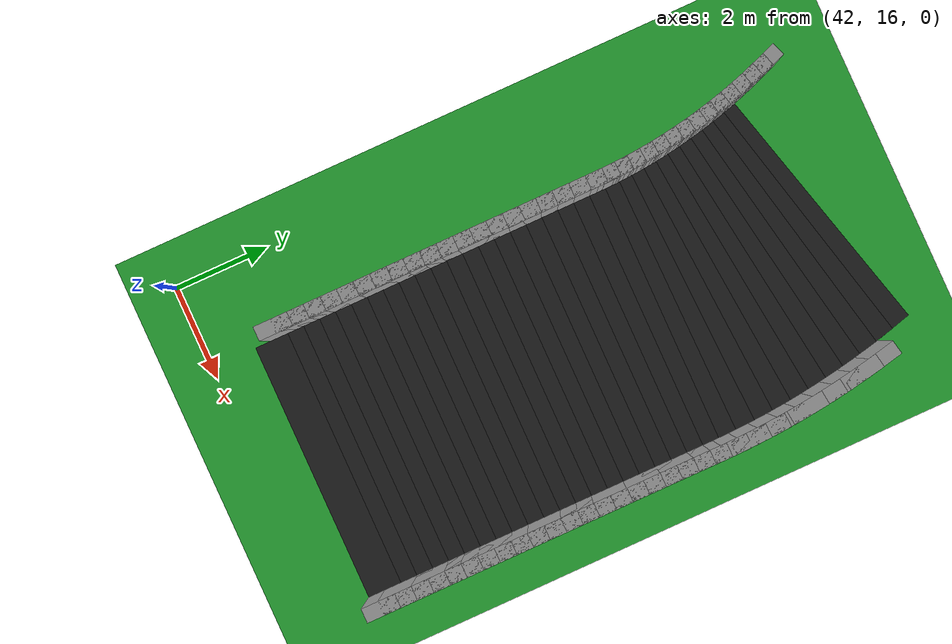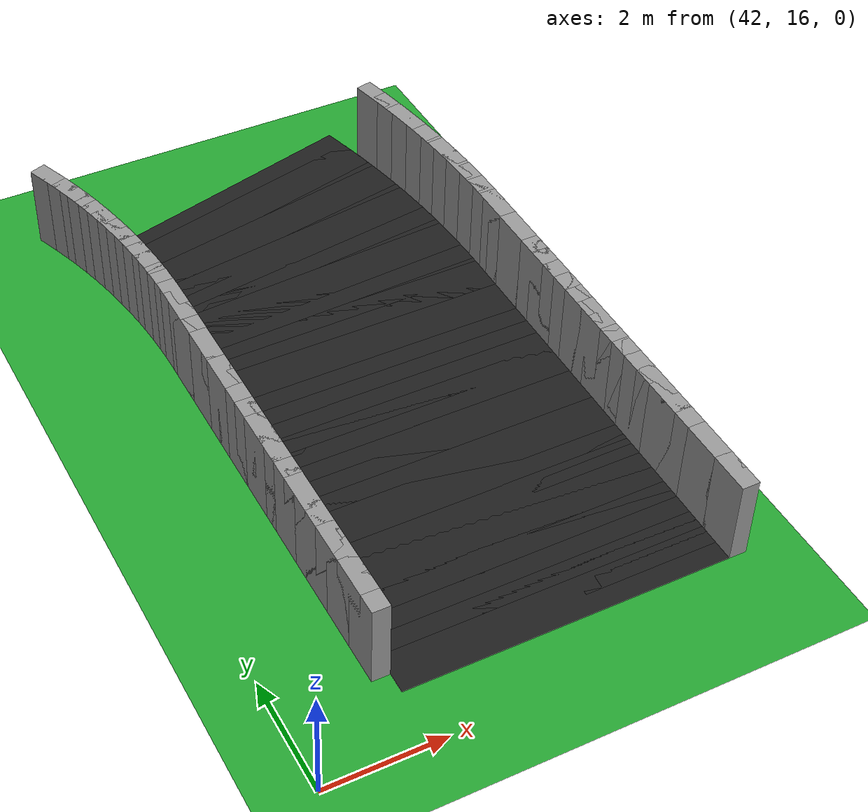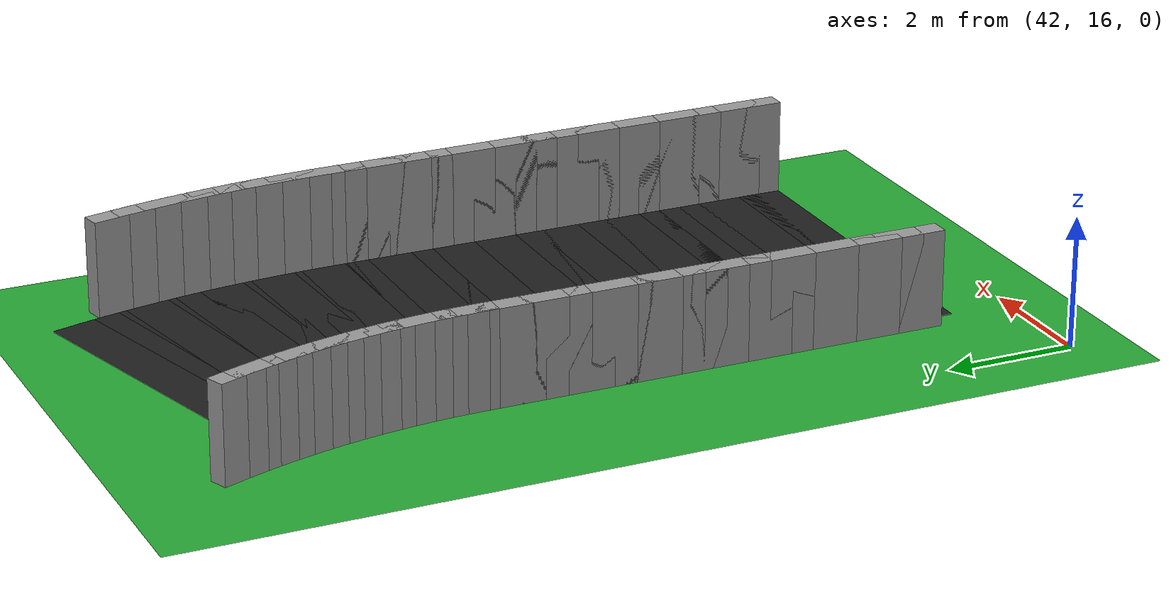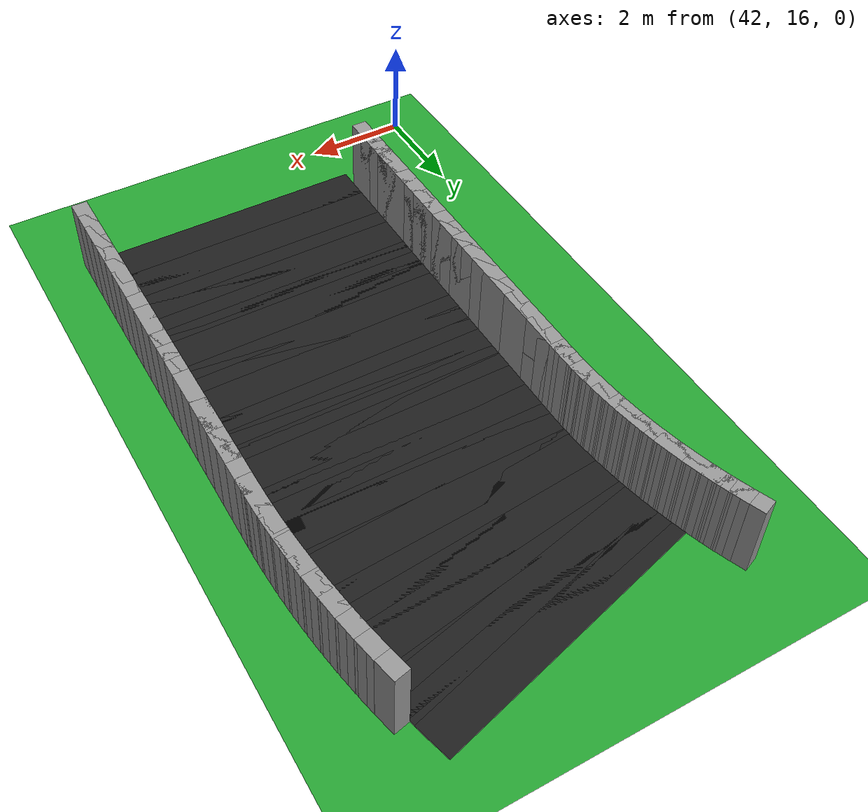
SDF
<sdf version="1.6">
 <world name="loop_speedloop">
  <include><uri>model://sun</uri></include>
  <model name="ground_plane">
   <static>true</static>
   <link name="link">
    <collision name="collision">
     <surface><friction><ode><mu>100</mu><mu2>50</mu2></ode></friction></surface>
     <geometry><plane><normal>0 0 1</normal><size>120 120</size></plane></geometry>
    </collision>
    <visual name="visual">
     <geometry><plane><normal>0 0 1</normal><size>120 120</size></plane></geometry>
     <material>
      <script><uri>file://media/materials/scripts/gazebo.material</uri><name>Gazebo/Green</name></script>
     </material>
    </visual>
   </link>
  </model>
  <model name="asphalt_176">
   <static>true</static>
   <pose>46.501 17.308 0.005 0 0 1.57080</pose>
   <link name="link">
    <visual name="visual">
     <geometry><box><size>0.711 5.500 0.010</size></box></geometry>
     <material>
      <script><uri>file://media/materials/scripts/gazebo.material</uri><name>Gazebo/Black</name></script>
     </material>
    </visual>
   </link>
  </model>
  <model name="curbR_176">
   <static>true</static>
   <pose>49.401 17.308 0.750 0 0 1.57080</pose>
   <link name="link">
    <collision name="collision"><geometry><box><size>0.711 0.300 1.500</size></box></geometry></collision>
    <visual name="visual">
     <geometry><box><size>0.711 0.300 1.500</size></box></geometry>
     <material>
      <script><uri>file://media/materials/scripts/gazebo.material</uri><name>Gazebo/Grey</name></script>
     </material>
    </visual>
   </link>
  </model>
  <model name="asphalt_177">
   <static>true</static>
   <pose>46.501 17.659 0.005 0 0 1.57080</pose>
   <link name="link">
    <visual name="visual">
     <geometry><box><size>0.711 5.500 0.010</size></box></geometry>
     <material>
      <script><uri>file://media/materials/scripts/gazebo.material</uri><name>Gazebo/Black</name></script>
     </material>
    </visual>
   </link>
  </model>
  <model name="curbL_177">
   <static>true</static>
   <pose>43.601 17.659 0.750 0 0 1.57080</pose>
   <link name="link">
    <collision name="collision"><geometry><box><size>0.711 0.300 1.500</size></box></geometry></collision>
    <visual name="visual">
     <geometry><box><size>0.711 0.300 1.500</size></box></geometry>
     <material>
      <script><uri>file://media/materials/scripts/gazebo.material</uri><name>Gazebo/Grey</name></script>
     </material>
    </visual>
   </link>
  </model>
  <model name="curbR_177">
   <static>true</static>
   <pose>49.401 17.659 0.750 0 0 1.57080</pose>
   <link name="link">
    <collision name="collision"><geometry><box><size>0.711 0.300 1.500</size></box></geometry></collision>
    <visual name="visual">
     <geometry><box><size>0.711 0.300 1.500</size></box></geometry>
     <material>
      <script><uri>file://media/materials/scripts/gazebo.material</uri><name>Gazebo/Grey</name></script>
     </material>
    </visual>
   </link>
  </model>
  <model name="asphalt_178">
   <static>true</static>
   <pose>46.501 18.010 0.005 0 0 1.57080</pose>
   <link name="link">
    <visual name="visual">
     <geometry><box><size>0.711 5.500 0.010</size></box></geometry>
     <material>
      <script><uri>file://media/materials/scripts/gazebo.material</uri><name>Gazebo/Black</name></script>
     </material>
    </visual>
   </link>
  </model>
  <model name="curbL_178">
   <static>true</static>
   <pose>43.601 18.010 0.750 0 0 1.57080</pose>
   <link name="link">
    <collision name="collision"><geometry><box><size>0.711 0.300 1.500</size></box></geometry></collision>
    <visual name="visual">
     <geometry><box><size>0.711 0.300 1.500</size></box></geometry>
     <material>
      <script><uri>file://media/materials/scripts/gazebo.material</uri><name>Gazebo/Grey</name></script>
     </material>
    </visual>
   </link>
  </model>
  <model name="curbR_178">
   <static>true</static>
   <pose>49.401 18.010 0.750 0 0 1.57080</pose>
   <link name="link">
    <collision name="collision"><geometry><box><size>0.711 0.300 1.500</size></box></geometry></collision>
    <visual name="visual">
     <geometry><box><size>0.711 0.300 1.500</size></box></geometry>
     <material>
      <script><uri>file://media/materials/scripts/gazebo.material</uri><name>Gazebo/Grey</name></script>
     </material>
    </visual>
   </link>
  </model>
  <model name="asphalt_179">
   <static>true</static>
   <pose>46.501 18.361 0.005 0 0 1.57080</pose>
   <link name="link">
    <visual name="visual">
     <geometry><box><size>0.711 5.500 0.010</size></box></geometry>
     <material>
      <script><uri>file://media/materials/scripts/gazebo.material</uri><name>Gazebo/Black</name></script>
     </material>
    </visual>
   </link>
  </model>
  <model name="curbL_179">
   <static>true</static>
   <pose>43.601 18.361 0.750 0 0 1.57080</pose>
   <link name="link">
    <collision name="collision"><geometry><box><size>0.711 0.300 1.500</size></box></geometry></collision>
    <visual name="visual">
     <geometry><box><size>0.711 0.300 1.500</size></box></geometry>
     <material>
      <script><uri>file://media/materials/scripts/gazebo.material</uri><name>Gazebo/Grey</name></script>
     </material>
    </visual>
   </link>
  </model>
  <model name="curbR_179">
   <static>true</static>
   <pose>49.401 18.361 0.750 0 0 1.57080</pose>
   <link name="link">
    <collision name="collision"><geometry><box><size>0.711 0.300 1.500</size></box></geometry></collision>
    <visual name="visual">
     <geometry><box><size>0.711 0.300 1.500</size></box></geometry>
     <material>
      <script><uri>file://media/materials/scripts/gazebo.material</uri><name>Gazebo/Grey</name></script>
     </material>
    </visual>
   </link>
  </model>
  <model name="asphalt_180">
   <static>true</static>
   <pose>46.501 18.712 0.005 0 0 1.57080</pose>
   <link name="link">
    <visual name="visual">
     <geometry><box><size>0.711 5.500 0.010</size></box></geometry>
     <material>
      <script><uri>file://media/materials/scripts/gazebo.material</uri><name>Gazebo/Black</name></script>
     </material>
    </visual>
   </link>
  </model>
  <model name="curbL_180">
   <static>true</static>
   <pose>43.601 18.712 0.750 0 0 1.57080</pose>
   <link name="link">
    <collision name="collision"><geometry><box><size>0.711 0.300 1.500</size></box></geometry></collision>
    <visual name="visual">
     <geometry><box><size>0.711 0.300 1.500</size></box></geometry>
     <material>
      <script><uri>file://media/materials/scripts/gazebo.material</uri><name>Gazebo/Grey</name></script>
     </material>
    </visual>
   </link>
  </model>
  <model name="curbR_180">
   <static>true</static>
   <pose>49.401 18.712 0.750 0 0 1.57080</pose>
   <link name="link">
    <collision name="collision"><geometry><box><size>0.711 0.300 1.500</size></box></geometry></collision>
    <visual name="visual">
     <geometry><box><size>0.711 0.300 1.500</size></box></geometry>
     <material>
      <script><uri>file://media/materials/scripts/gazebo.material</uri><name>Gazebo/Grey</name></script>
     </material>
    </visual>
   </link>
  </model>
  <model name="asphalt_181">
   <static>true</static>
   <pose>46.501 19.063 0.005 0 0 1.57080</pose>
   <link name="link">
    <visual name="visual">
     <geometry><box><size>0.711 5.500 0.010</size></box></geometry>
     <material>
      <script><uri>file://media/materials/scripts/gazebo.material</uri><name>Gazebo/Black</name></script>
     </material>
    </visual>
   </link>
  </model>
  <model name="curbL_181">
   <static>true</static>
   <pose>43.601 19.063 0.750 0 0 1.57080</pose>
   <link name="link">
    <collision name="collision"><geometry><box><size>0.711 0.300 1.500</size></box></geometry></collision>
    <visual name="visual">
     <geometry><box><size>0.711 0.300 1.500</size></box></geometry>
     <material>
      <script><uri>file://media/materials/scripts/gazebo.material</uri><name>Gazebo/Grey</name></script>
     </material>
    </visual>
   </link>
  </model>
  <model name="curbR_181">
   <static>true</static>
   <pose>49.401 19.063 0.750 0 0 1.57080</pose>
   <link name="link">
    <collision name="collision"><geometry><box><size>0.711 0.300 1.500</size></box></geometry></collision>
    <visual name="visual">
     <geometry><box><size>0.711 0.300 1.500</size></box></geometry>
     <material>
      <script><uri>file://media/materials/scripts/gazebo.material</uri><name>Gazebo/Grey</name></script>
     </material>
    </visual>
   </link>
  </model>
  <model name="asphalt_182">
   <static>true</static>
   <pose>46.501 19.413 0.005 0 0 1.57080</pose>
   <link name="link">
    <visual name="visual">
     <geometry><box><size>0.711 5.500 0.010</size></box></geometry>
     <material>
      <script><uri>file://media/materials/scripts/gazebo.material</uri><name>Gazebo/Black</name></script>
     </material>
    </visual>
   </link>
  </model>
  <model name="curbL_182">
   <static>true</static>
   <pose>43.601 19.413 0.750 0 0 1.57080</pose>
   <link name="link">
    <collision name="collision"><geometry><box><size>0.711 0.300 1.500</size></box></geometry></collision>
    <visual name="visual">
     <geometry><box><size>0.711 0.300 1.500</size></box></geometry>
     <material>
      <script><uri>file://media/materials/scripts/gazebo.material</uri><name>Gazebo/Grey</name></script>
     </material>
    </visual>
   </link>
  </model>
  <model name="curbR_182">
   <static>true</static>
   <pose>49.401 19.413 0.750 0 0 1.57080</pose>
   <link name="link">
    <collision name="collision"><geometry><box><size>0.711 0.300 1.500</size></box></geometry></collision>
    <visual name="visual">
     <geometry><box><size>0.711 0.300 1.500</size></box></geometry>
     <material>
      <script><uri>file://media/materials/scripts/gazebo.material</uri><name>Gazebo/Grey</name></script>
     </material>
    </visual>
   </link>
  </model>
  <model name="asphalt_183">
   <static>true</static>
   <pose>46.501 19.764 0.005 0 0 1.57080</pose>
   <link name="link">
    <visual name="visual">
     <geometry><box><size>0.711 5.500 0.010</size></box></geometry>
     <material>
      <script><uri>file://media/materials/scripts/gazebo.material</uri><name>Gazebo/Black</name></script>
     </material>
    </visual>
   </link>
  </model>
  <model name="curbL_183">
   <static>true</static>
   <pose>43.601 19.764 0.750 0 0 1.57080</pose>
   <link name="link">
    <collision name="collision"><geometry><box><size>0.711 0.300 1.500</size></box></geometry></collision>
    <visual name="visual">
     <geometry><box><size>0.711 0.300 1.500</size></box></geometry>
     <material>
      <script><uri>file://media/materials/scripts/gazebo.material</uri><name>Gazebo/Grey</name></script>
     </material>
    </visual>
   </link>
  </model>
  <model name="curbR_183">
   <static>true</static>
   <pose>49.401 19.764 0.750 0 0 1.57080</pose>
   <link name="link">
    <collision name="collision"><geometry><box><size>0.711 0.300 1.500</size></box></geometry></collision>
    <visual name="visual">
     <geometry><box><size>0.711 0.300 1.500</size></box></geometry>
     <material>
      <script><uri>file://media/materials/scripts/gazebo.material</uri><name>Gazebo/Grey</name></script>
     </material>
    </visual>
   </link>
  </model>
  <model name="asphalt_184">
   <static>true</static>
   <pose>46.501 20.115 0.005 0 0 1.57080</pose>
   <link name="link">
    <visual name="visual">
     <geometry><box><size>0.711 5.500 0.010</size></box></geometry>
     <material>
      <script><uri>file://media/materials/scripts/gazebo.material</uri><name>Gazebo/Black</name></script>
     </material>
    </visual>
   </link>
  </model>
  <model name="curbL_184">
   <static>true</static>
   <pose>43.601 20.115 0.750 0 0 1.57080</pose>
   <link name="link">
    <collision name="collision"><geometry><box><size>0.711 0.300 1.500</size></box></geometry></collision>
    <visual name="visual">
     <geometry><box><size>0.711 0.300 1.500</size></box></geometry>
     <material>
      <script><uri>file://media/materials/scripts/gazebo.material</uri><name>Gazebo/Grey</name></script>
     </material>
    </visual>
   </link>
  </model>
  <model name="curbR_184">
   <static>true</static>
   <pose>49.401 20.115 0.750 0 0 1.57080</pose>
   <link name="link">
    <collision name="collision"><geometry><box><size>0.711 0.300 1.500</size></box></geometry></collision>
    <visual name="visual">
     <geometry><box><size>0.711 0.300 1.500</size></box></geometry>
     <material>
      <script><uri>file://media/materials/scripts/gazebo.material</uri><name>Gazebo/Grey</name></script>
     </material>
    </visual>
   </link>
  </model>
  <model name="asphalt_185">
   <static>true</static>
   <pose>46.501 20.466 0.005 0 0 1.57080</pose>
   <link name="link">
    <visual name="visual">
     <geometry><box><size>0.711 5.500 0.010</size></box></geometry>
     <material>
      <script><uri>file://media/materials/scripts/gazebo.material</uri><name>Gazebo/Black</name></script>
     </material>
    </visual>
   </link>
  </model>
  <model name="curbL_185">
   <static>true</static>
   <pose>43.601 20.466 0.750 0 0 1.57080</pose>
   <link name="link">
    <collision name="collision"><geometry><box><size>0.711 0.300 1.500</size></box></geometry></collision>
    <visual name="visual">
     <geometry><box><size>0.711 0.300 1.500</size></box></geometry>
     <material>
      <script><uri>file://media/materials/scripts/gazebo.material</uri><name>Gazebo/Grey</name></script>
     </material>
    </visual>
   </link>
  </model>
  <model name="curbR_185">
   <static>true</static>
   <pose>49.401 20.466 0.750 0 0 1.57080</pose>
   <link name="link">
    <collision name="collision"><geometry><box><size>0.711 0.300 1.500</size></box></geometry></collision>
    <visual name="visual">
     <geometry><box><size>0.711 0.300 1.500</size></box></geometry>
     <material>
      <script><uri>file://media/materials/scripts/gazebo.material</uri><name>Gazebo/Grey</name></script>
     </material>
    </visual>
   </link>
  </model>
  <model name="asphalt_186">
   <static>true</static>
   <pose>46.501 20.817 0.005 0 0 1.57080</pose>
   <link name="link">
    <visual name="visual">
     <geometry><box><size>0.711 5.500 0.010</size></box></geometry>
     <material>
      <script><uri>file://media/materials/scripts/gazebo.material</uri><name>Gazebo/Black</name></script>
     </material>
    </visual>
   </link>
  </model>
  <model name="curbL_186">
   <static>true</static>
   <pose>43.601 20.817 0.750 0 0 1.57080</pose>
   <link name="link">
    <collision name="collision"><geometry><box><size>0.711 0.300 1.500</size></box></geometry></collision>
    <visual name="visual">
     <geometry><box><size>0.711 0.300 1.500</size></box></geometry>
     <material>
      <script><uri>file://media/materials/scripts/gazebo.material</uri><name>Gazebo/Grey</name></script>
     </material>
    </visual>
   </link>
  </model>
  <model name="curbR_186">
   <static>true</static>
   <pose>49.401 20.817 0.750 0 0 1.57080</pose>
   <link name="link">
    <collision name="collision"><geometry><box><size>0.711 0.300 1.500</size></box></geometry></collision>
    <visual name="visual">
     <geometry><box><size>0.711 0.300 1.500</size></box></geometry>
     <material>
      <script><uri>file://media/materials/scripts/gazebo.material</uri><name>Gazebo/Grey</name></script>
     </material>
    </visual>
   </link>
  </model>
  <model name="asphalt_187">
   <static>true</static>
   <pose>46.501 21.168 0.005 0 0 1.57080</pose>
   <link name="link">
    <visual name="visual">
     <geometry><box><size>0.711 5.500 0.010</size></box></geometry>
     <material>
      <script><uri>file://media/materials/scripts/gazebo.material</uri><name>Gazebo/Black</name></script>
     </material>
    </visual>
   </link>
  </model>
  <model name="curbL_187">
   <static>true</static>
   <pose>43.601 21.168 0.750 0 0 1.57080</pose>
   <link name="link">
    <collision name="collision"><geometry><box><size>0.711 0.300 1.500</size></box></geometry></collision>
    <visual name="visual">
     <geometry><box><size>0.711 0.300 1.500</size></box></geometry>
     <material>
      <script><uri>file://media/materials/scripts/gazebo.material</uri><name>Gazebo/Grey</name></script>
     </material>
    </visual>
   </link>
  </model>
  <model name="curbR_187">
   <static>true</static>
   <pose>49.401 21.168 0.750 0 0 1.57080</pose>
   <link name="link">
    <collision name="collision"><geometry><box><size>0.711 0.300 1.500</size></box></geometry></collision>
    <visual name="visual">
     <geometry><box><size>0.711 0.300 1.500</size></box></geometry>
     <material>
      <script><uri>file://media/materials/scripts/gazebo.material</uri><name>Gazebo/Grey</name></script>
     </material>
    </visual>
   </link>
  </model>
  <model name="asphalt_188">
   <static>true</static>
   <pose>46.501 21.519 0.005 0 0 1.57080</pose>
   <link name="link">
    <visual name="visual">
     <geometry><box><size>0.711 5.500 0.010</size></box></geometry>
     <material>
      <script><uri>file://media/materials/scripts/gazebo.material</uri><name>Gazebo/Black</name></script>
     </material>
    </visual>
   </link>
  </model>
  <model name="curbL_188">
   <static>true</static>
   <pose>43.601 21.519 0.750 0 0 1.57080</pose>
   <link name="link">
    <collision name="collision"><geometry><box><size>0.711 0.300 1.500</size></box></geometry></collision>
    <visual name="visual">
     <geometry><box><size>0.711 0.300 1.500</size></box></geometry>
     <material>
      <script><uri>file://media/materials/scripts/gazebo.material</uri><name>Gazebo/Grey</name></script>
     </material>
    </visual>
   </link>
  </model>
  <model name="curbR_188">
   <static>true</static>
   <pose>49.401 21.519 0.750 0 0 1.57080</pose>
   <link name="link">
    <collision name="collision"><geometry><box><size>0.711 0.300 1.500</size></box></geometry></collision>
    <visual name="visual">
     <geometry><box><size>0.711 0.300 1.500</size></box></geometry>
     <material>
      <script><uri>file://media/materials/scripts/gazebo.material</uri><name>Gazebo/Grey</name></script>
     </material>
    </visual>
   </link>
  </model>
  <model name="asphalt_189">
   <static>true</static>
   <pose>46.501 21.870 0.005 0 0 1.57080</pose>
   <link name="link">
    <visual name="visual">
     <geometry><box><size>0.711 5.500 0.010</size></box></geometry>
     <material>
      <script><uri>file://media/materials/scripts/gazebo.material</uri><name>Gazebo/Black</name></script>
     </material>
    </visual>
   </link>
  </model>
  <model name="curbL_189">
   <static>true</static>
   <pose>43.601 21.870 0.750 0 0 1.57080</pose>
   <link name="link">
    <collision name="collision"><geometry><box><size>0.711 0.300 1.500</size></box></geometry></collision>
    <visual name="visual">
     <geometry><box><size>0.711 0.300 1.500</size></box></geometry>
     <material>
      <script><uri>file://media/materials/scripts/gazebo.material</uri><name>Gazebo/Grey</name></script>
     </material>
    </visual>
   </link>
  </model>
  <model name="curbR_189">
   <static>true</static>
   <pose>49.401 21.870 0.750 0 0 1.57080</pose>
   <link name="link">
    <collision name="collision"><geometry><box><size>0.711 0.300 1.500</size></box></geometry></collision>
    <visual name="visual">
     <geometry><box><size>0.711 0.300 1.500</size></box></geometry>
     <material>
      <script><uri>file://media/materials/scripts/gazebo.material</uri><name>Gazebo/Grey</name></script>
     </material>
    </visual>
   </link>
  </model>
  <model name="asphalt_190">
   <static>true</static>
   <pose>46.501 22.220 0.005 0 0 1.57080</pose>
   <link name="link">
    <visual name="visual">
     <geometry><box><size>0.711 5.500 0.010</size></box></geometry>
     <material>
      <script><uri>file://media/materials/scripts/gazebo.material</uri><name>Gazebo/Black</name></script>
     </material>
    </visual>
   </link>
  </model>
  <model name="curbL_190">
   <static>true</static>
   <pose>43.601 22.220 0.750 0 0 1.57080</pose>
   <link name="link">
    <collision name="collision"><geometry><box><size>0.711 0.300 1.500</size></box></geometry></collision>
    <visual name="visual">
     <geometry><box><size>0.711 0.300 1.500</size></box></geometry>
     <material>
      <script><uri>file://media/materials/scripts/gazebo.material</uri><name>Gazebo/Grey</name></script>
     </material>
    </visual>
   </link>
  </model>
  <model name="curbR_190">
   <static>true</static>
   <pose>49.401 22.220 0.750 0 0 1.57080</pose>
   <link name="link">
    <collision name="collision"><geometry><box><size>0.711 0.300 1.500</size></box></geometry></collision>
    <visual name="visual">
     <geometry><box><size>0.711 0.300 1.500</size></box></geometry>
     <material>
      <script><uri>file://media/materials/scripts/gazebo.material</uri><name>Gazebo/Grey</name></script>
     </material>
    </visual>
   </link>
  </model>
  <model name="asphalt_191">
   <static>true</static>
   <pose>46.501 22.571 0.005 0 0 1.57080</pose>
   <link name="link">
    <visual name="visual">
     <geometry><box><size>0.711 5.500 0.010</size></box></geometry>
     <material>
      <script><uri>file://media/materials/scripts/gazebo.material</uri><name>Gazebo/Black</name></script>
     </material>
    </visual>
   </link>
  </model>
  <model name="curbL_191">
   <static>true</static>
   <pose>43.601 22.571 0.750 0 0 1.57080</pose>
   <link name="link">
    <collision name="collision"><geometry><box><size>0.711 0.300 1.500</size></box></geometry></collision>
    <visual name="visual">
     <geometry><box><size>0.711 0.300 1.500</size></box></geometry>
     <material>
      <script><uri>file://media/materials/scripts/gazebo.material</uri><name>Gazebo/Grey</name></script>
     </material>
    </visual>
   </link>
  </model>
  <model name="curbR_191">
   <static>true</static>
   <pose>49.401 22.571 0.750 0 0 1.57080</pose>
   <link name="link">
    <collision name="collision"><geometry><box><size>0.711 0.300 1.500</size></box></geometry></collision>
    <visual name="visual">
     <geometry><box><size>0.711 0.300 1.500</size></box></geometry>
     <material>
      <script><uri>file://media/materials/scripts/gazebo.material</uri><name>Gazebo/Grey</name></script>
     </material>
    </visual>
   </link>
  </model>
  <model name="asphalt_192">
   <static>true</static>
   <pose>46.501 22.922 0.005 0 0 1.57080</pose>
   <link name="link">
    <visual name="visual">
     <geometry><box><size>0.711 5.500 0.010</size></box></geometry>
     <material>
      <script><uri>file://media/materials/scripts/gazebo.material</uri><name>Gazebo/Black</name></script>
     </material>
    </visual>
   </link>
  </model>
  <model name="curbL_192">
   <static>true</static>
   <pose>43.601 22.922 0.750 0 0 1.57080</pose>
   <link name="link">
    <collision name="collision"><geometry><box><size>0.711 0.300 1.500</size></box></geometry></collision>
    <visual name="visual">
     <geometry><box><size>0.711 0.300 1.500</size></box></geometry>
     <material>
      <script><uri>file://media/materials/scripts/gazebo.material</uri><name>Gazebo/Grey</name></script>
     </material>
    </visual>
   </link>
  </model>
  <model name="curbR_192">
   <static>true</static>
   <pose>49.401 22.922 0.750 0 0 1.57080</pose>
   <link name="link">
    <collision name="collision"><geometry><box><size>0.711 0.300 1.500</size></box></geometry></collision>
    <visual name="visual">
     <geometry><box><size>0.711 0.300 1.500</size></box></geometry>
     <material>
      <script><uri>file://media/materials/scripts/gazebo.material</uri><name>Gazebo/Grey</name></script>
     </material>
    </visual>
   </link>
  </model>
  <model name="asphalt_193">
   <static>true</static>
   <pose>46.501 23.273 0.005 0 0 1.57080</pose>
   <link name="link">
    <visual name="visual">
     <geometry><box><size>0.711 5.500 0.010</size></box></geometry>
     <material>
      <script><uri>file://media/materials/scripts/gazebo.material</uri><name>Gazebo/Black</name></script>
     </material>
    </visual>
   </link>
  </model>
  <model name="curbL_193">
   <static>true</static>
   <pose>43.601 23.273 0.750 0 0 1.57080</pose>
   <link name="link">
    <collision name="collision"><geometry><box><size>0.711 0.300 1.500</size></box></geometry></collision>
    <visual name="visual">
     <geometry><box><size>0.711 0.300 1.500</size></box></geometry>
     <material>
      <script><uri>file://media/materials/scripts/gazebo.material</uri><name>Gazebo/Grey</name></script>
     </material>
    </visual>
   </link>
  </model>
  <model name="curbR_193">
   <static>true</static>
   <pose>49.401 23.273 0.750 0 0 1.57080</pose>
   <link name="link">
    <collision name="collision"><geometry><box><size>0.711 0.300 1.500</size></box></geometry></collision>
    <visual name="visual">
     <geometry><box><size>0.711 0.300 1.500</size></box></geometry>
     <material>
      <script><uri>file://media/materials/scripts/gazebo.material</uri><name>Gazebo/Grey</name></script>
     </material>
    </visual>
   </link>
  </model>
  <model name="asphalt_194">
   <static>true</static>
   <pose>46.501 23.624 0.005 0 0 1.57080</pose>
   <link name="link">
    <visual name="visual">
     <geometry><box><size>0.711 5.500 0.010</size></box></geometry>
     <material>
      <script><uri>file://media/materials/scripts/gazebo.material</uri><name>Gazebo/Black</name></script>
     </material>
    </visual>
   </link>
  </model>
  <model name="curbL_194">
   <static>true</static>
   <pose>43.601 23.624 0.750 0 0 1.57080</pose>
   <link name="link">
    <collision name="collision"><geometry><box><size>0.711 0.300 1.500</size></box></geometry></collision>
    <visual name="visual">
     <geometry><box><size>0.711 0.300 1.500</size></box></geometry>
     <material>
      <script><uri>file://media/materials/scripts/gazebo.material</uri><name>Gazebo/Grey</name></script>
     </material>
    </visual>
   </link>
  </model>
  <model name="curbR_194">
   <static>true</static>
   <pose>49.401 23.624 0.750 0 0 1.57080</pose>
   <link name="link">
    <collision name="collision"><geometry><box><size>0.711 0.300 1.500</size></box></geometry></collision>
    <visual name="visual">
     <geometry><box><size>0.711 0.300 1.500</size></box></geometry>
     <material>
      <script><uri>file://media/materials/scripts/gazebo.material</uri><name>Gazebo/Grey</name></script>
     </material>
    </visual>
   </link>
  </model>
  <model name="asphalt_195">
   <static>true</static>
   <pose>46.501 23.975 0.005 0 0 1.57080</pose>
   <link name="link">
    <visual name="visual">
     <geometry><box><size>0.711 5.500 0.010</size></box></geometry>
     <material>
      <script><uri>file://media/materials/scripts/gazebo.material</uri><name>Gazebo/Black</name></script>
     </material>
    </visual>
   </link>
  </model>
  <model name="curbL_195">
   <static>true</static>
   <pose>43.601 23.975 0.750 0 0 1.57080</pose>
   <link name="link">
    <collision name="collision"><geometry><box><size>0.711 0.300 1.500</size></box></geometry></collision>
    <visual name="visual">
     <geometry><box><size>0.711 0.300 1.500</size></box></geometry>
     <material>
      <script><uri>file://media/materials/scripts/gazebo.material</uri><name>Gazebo/Grey</name></script>
     </material>
    </visual>
   </link>
  </model>
  <model name="curbR_195">
   <static>true</static>
   <pose>49.401 23.975 0.750 0 0 1.57080</pose>
   <link name="link">
    <collision name="collision"><geometry><box><size>0.711 0.300 1.500</size></box></geometry></collision>
    <visual name="visual">
     <geometry><box><size>0.711 0.300 1.500</size></box></geometry>
     <material>
      <script><uri>file://media/materials/scripts/gazebo.material</uri><name>Gazebo/Grey</name></script>
     </material>
    </visual>
   </link>
  </model>
  <model name="asphalt_196">
   <static>true</static>
   <pose>46.501 24.326 0.005 0 0 1.57080</pose>
   <link name="link">
    <visual name="visual">
     <geometry><box><size>0.711 5.500 0.010</size></box></geometry>
     <material>
      <script><uri>file://media/materials/scripts/gazebo.material</uri><name>Gazebo/Black</name></script>
     </material>
    </visual>
   </link>
  </model>
  <model name="curbL_196">
   <static>true</static>
   <pose>43.601 24.326 0.750 0 0 1.57080</pose>
   <link name="link">
    <collision name="collision"><geometry><box><size>0.711 0.300 1.500</size></box></geometry></collision>
    <visual name="visual">
     <geometry><box><size>0.711 0.300 1.500</size></box></geometry>
     <material>
      <script><uri>file://media/materials/scripts/gazebo.material</uri><name>Gazebo/Grey</name></script>
     </material>
    </visual>
   </link>
  </model>
  <model name="curbR_196">
   <static>true</static>
   <pose>49.401 24.326 0.750 0 0 1.57080</pose>
   <link name="link">
    <collision name="collision"><geometry><box><size>0.711 0.300 1.500</size></box></geometry></collision>
    <visual name="visual">
     <geometry><box><size>0.711 0.300 1.500</size></box></geometry>
     <material>
      <script><uri>file://media/materials/scripts/gazebo.material</uri><name>Gazebo/Grey</name></script>
     </material>
    </visual>
   </link>
  </model>
  <model name="asphalt_197">
   <static>true</static>
   <pose>46.499 24.676 0.005 0 0 1.58326</pose>
   <link name="link">
    <visual name="visual">
     <geometry><box><size>0.709 5.500 0.010</size></box></geometry>
     <material>
      <script><uri>file://media/materials/scripts/gazebo.material</uri><name>Gazebo/Black</name></script>
     </material>
    </visual>
   </link>
  </model>
  <model name="curbL_197">
   <static>true</static>
   <pose>43.599 24.640 0.750 0 0 1.58326</pose>
   <link name="link">
    <collision name="collision"><geometry><box><size>0.637 0.300 1.500</size></box></geometry></collision>
    <visual name="visual">
     <geometry><box><size>0.637 0.300 1.500</size></box></geometry>
     <material>
      <script><uri>file://media/materials/scripts/gazebo.material</uri><name>Gazebo/Grey</name></script>
     </material>
    </visual>
   </link>
  </model>
  <model name="curbR_197">
   <static>true</static>
   <pose>49.399 24.712 0.750 0 0 1.58326</pose>
   <link name="link">
    <collision name="collision"><geometry><box><size>0.781 0.300 1.500</size></box></geometry></collision>
    <visual name="visual">
     <geometry><box><size>0.781 0.300 1.500</size></box></geometry>
     <material>
      <script><uri>file://media/materials/scripts/gazebo.material</uri><name>Gazebo/Grey</name></script>
     </material>
    </visual>
   </link>
  </model>
  <model name="asphalt_198">
   <static>true</static>
   <pose>46.490 25.025 0.005 0 0 1.60820</pose>
   <link name="link">
    <visual name="visual">
     <geometry><box><size>0.709 5.500 0.010</size></box></geometry>
     <material>
      <script><uri>file://media/materials/scripts/gazebo.material</uri><name>Gazebo/Black</name></script>
     </material>
    </visual>
   </link>
  </model>
  <model name="curbL_198">
   <static>true</static>
   <pose>43.593 24.916 0.750 0 0 1.60820</pose>
   <link name="link">
    <collision name="collision"><geometry><box><size>0.637 0.300 1.500</size></box></geometry></collision>
    <visual name="visual">
     <geometry><box><size>0.637 0.300 1.500</size></box></geometry>
     <material>
      <script><uri>file://media/materials/scripts/gazebo.material</uri><name>Gazebo/Grey</name></script>
     </material>
    </visual>
   </link>
  </model>
  <model name="curbR_198">
   <static>true</static>
   <pose>49.388 25.133 0.750 0 0 1.60820</pose>
   <link name="link">
    <collision name="collision"><geometry><box><size>0.781 0.300 1.500</size></box></geometry></collision>
    <visual name="visual">
     <geometry><box><size>0.781 0.300 1.500</size></box></geometry>
     <material>
      <script><uri>file://media/materials/scripts/gazebo.material</uri><name>Gazebo/Grey</name></script>
     </material>
    </visual>
   </link>
  </model>
  <model name="asphalt_199">
   <static>true</static>
   <pose>46.473 25.373 0.005 0 0 1.63313</pose>
   <link name="link">
    <visual name="visual">
     <geometry><box><size>0.709 5.500 0.010</size></box></geometry>
     <material>
      <script><uri>file://media/materials/scripts/gazebo.material</uri><name>Gazebo/Black</name></script>
     </material>
    </visual>
   </link>
  </model>
  <model name="curbL_199">
   <static>true</static>
   <pose>43.579 25.193 0.750 0 0 1.63313</pose>
   <link name="link">
    <collision name="collision"><geometry><box><size>0.637 0.300 1.500</size></box></geometry></collision>
    <visual name="visual">
     <geometry><box><size>0.637 0.300 1.500</size></box></geometry>
     <material>
      <script><uri>file://media/materials/scripts/gazebo.material</uri><name>Gazebo/Grey</name></script>
     </material>
    </visual>
   </link>
  </model>
  <model name="curbR_199">
   <static>true</static>
   <pose>49.367 25.554 0.750 0 0 1.63313</pose>
   <link name="link">
    <collision name="collision"><geometry><box><size>0.781 0.300 1.500</size></box></geometry></collision>
    <visual name="visual">
     <geometry><box><size>0.781 0.300 1.500</size></box></geometry>
     <material>
      <script><uri>file://media/materials/scripts/gazebo.material</uri><name>Gazebo/Grey</name></script>
     </material>
    </visual>
   </link>
  </model>
  <model name="asphalt_200">
   <static>true</static>
   <pose>46.447 25.721 0.005 0 0 1.65806</pose>
   <link name="link">
    <visual name="visual">
     <geometry><box><size>0.709 5.500 0.010</size></box></geometry>
     <material>
      <script><uri>file://media/materials/scripts/gazebo.material</uri><name>Gazebo/Black</name></script>
     </material>
    </visual>
   </link>
  </model>
  <model name="curbL_200">
   <static>true</static>
   <pose>43.558 25.469 0.750 0 0 1.65806</pose>
   <link name="link">
    <collision name="collision"><geometry><box><size>0.637 0.300 1.500</size></box></geometry></collision>
    <visual name="visual">
     <geometry><box><size>0.637 0.300 1.500</size></box></geometry>
     <material>
      <script><uri>file://media/materials/scripts/gazebo.material</uri><name>Gazebo/Grey</name></script>
     </material>
    </visual>
   </link>
  </model>
  <model name="curbR_200">
   <static>true</static>
   <pose>49.336 25.974 0.750 0 0 1.65806</pose>
   <link name="link">
    <collision name="collision"><geometry><box><size>0.781 0.300 1.500</size></box></geometry></collision>
    <visual name="visual">
     <geometry><box><size>0.781 0.300 1.500</size></box></geometry>
     <material>
      <script><uri>file://media/materials/scripts/gazebo.material</uri><name>Gazebo/Grey</name></script>
     </material>
    </visual>
   </link>
  </model>
  <model name="asphalt_201">
   <static>true</static>
   <pose>46.412 26.069 0.005 0 0 1.68300</pose>
   <link name="link">
    <visual name="visual">
     <geometry><box><size>0.709 5.500 0.010</size></box></geometry>
     <material>
      <script><uri>file://media/materials/scripts/gazebo.material</uri><name>Gazebo/Black</name></script>
     </material>
    </visual>
   </link>
  </model>
  <model name="curbL_201">
   <static>true</static>
   <pose>43.531 25.744 0.750 0 0 1.68300</pose>
   <link name="link">
    <collision name="collision"><geometry><box><size>0.637 0.300 1.500</size></box></geometry></collision>
    <visual name="visual">
     <geometry><box><size>0.637 0.300 1.500</size></box></geometry>
     <material>
      <script><uri>file://media/materials/scripts/gazebo.material</uri><name>Gazebo/Grey</name></script>
     </material>
    </visual>
   </link>
  </model>
  <model name="curbR_201">
   <static>true</static>
   <pose>49.294 26.393 0.750 0 0 1.68300</pose>
   <link name="link">
    <collision name="collision"><geometry><box><size>0.781 0.300 1.500</size></box></geometry></collision>
    <visual name="visual">
     <geometry><box><size>0.781 0.300 1.500</size></box></geometry>
     <material>
      <script><uri>file://media/materials/scripts/gazebo.material</uri><name>Gazebo/Grey</name></script>
     </material>
    </visual>
   </link>
  </model>
  <model name="asphalt_202">
   <static>true</static>
   <pose>46.369 26.415 0.005 0 0 1.70793</pose>
   <link name="link">
    <visual name="visual">
     <geometry><box><size>0.709 5.500 0.010</size></box></geometry>
     <material>
      <script><uri>file://media/materials/scripts/gazebo.material</uri><name>Gazebo/Black</name></script>
     </material>
    </visual>
   </link>
  </model>
  <model name="curbL_202">
   <static>true</static>
   <pose>43.496 26.018 0.750 0 0 1.70793</pose>
   <link name="link">
    <collision name="collision"><geometry><box><size>0.637 0.300 1.500</size></box></geometry></collision>
    <visual name="visual">
     <geometry><box><size>0.637 0.300 1.500</size></box></geometry>
     <material>
      <script><uri>file://media/materials/scripts/gazebo.material</uri><name>Gazebo/Grey</name></script>
     </material>
    </visual>
   </link>
  </model>
  <model name="curbR_202">
   <static>true</static>
   <pose>49.241 26.811 0.750 0 0 1.70793</pose>
   <link name="link">
    <collision name="collision"><geometry><box><size>0.781 0.300 1.500</size></box></geometry></collision>
    <visual name="visual">
     <geometry><box><size>0.781 0.300 1.500</size></box></geometry>
     <material>
      <script><uri>file://media/materials/scripts/gazebo.material</uri><name>Gazebo/Grey</name></script>
     </material>
    </visual>
   </link>
  </model>
  <model name="asphalt_203">
   <static>true</static>
   <pose>46.317 26.760 0.005 0 0 1.73286</pose>
   <link name="link">
    <visual name="visual">
     <geometry><box><size>0.709 5.500 0.010</size></box></geometry>
     <material>
      <script><uri>file://media/materials/scripts/gazebo.material</uri><name>Gazebo/Black</name></script>
     </material>
    </visual>
   </link>
  </model>
  <model name="curbL_203">
   <static>true</static>
   <pose>43.455 26.292 0.750 0 0 1.73286</pose>
   <link name="link">
    <collision name="collision"><geometry><box><size>0.637 0.300 1.500</size></box></geometry></collision>
    <visual name="visual">
     <geometry><box><size>0.637 0.300 1.500</size></box></geometry>
     <material>
      <script><uri>file://media/materials/scripts/gazebo.material</uri><name>Gazebo/Grey</name></script>
     </material>
    </visual>
   </link>
  </model>
  <model name="curbR_203">
   <static>true</static>
   <pose>49.178 27.228 0.750 0 0 1.73286</pose>
   <link name="link">
    <collision name="collision"><geometry><box><size>0.781 0.300 1.500</size></box></geometry></collision>
    <visual name="visual">
     <geometry><box><size>0.781 0.300 1.500</size></box></geometry>
     <material>
      <script><uri>file://media/materials/scripts/gazebo.material</uri><name>Gazebo/Grey</name></script>
     </material>
    </visual>
   </link>
  </model>
  <model name="asphalt_204">
   <static>true</static>
   <pose>46.256 27.104 0.005 0 0 1.75780</pose>
   <link name="link">
    <visual name="visual">
     <geometry><box><size>0.709 5.500 0.010</size></box></geometry>
     <material>
      <script><uri>file://media/materials/scripts/gazebo.material</uri><name>Gazebo/Black</name></script>
     </material>
    </visual>
   </link>
  </model>
  <model name="curbL_204">
   <static>true</static>
   <pose>43.407 26.565 0.750 0 0 1.75780</pose>
   <link name="link">
    <collision name="collision"><geometry><box><size>0.637 0.300 1.500</size></box></geometry></collision>
    <visual name="visual">
     <geometry><box><size>0.637 0.300 1.500</size></box></geometry>
     <material>
      <script><uri>file://media/materials/scripts/gazebo.material</uri><name>Gazebo/Grey</name></script>
     </material>
    </visual>
   </link>
  </model>
  <model name="curbR_204">
   <static>true</static>
   <pose>49.105 27.643 0.750 0 0 1.75780</pose>
   <link name="link">
    <collision name="collision"><geometry><box><size>0.781 0.300 1.500</size></box></geometry></collision>
    <visual name="visual">
     <geometry><box><size>0.781 0.300 1.500</size></box></geometry>
     <material>
      <script><uri>file://media/materials/scripts/gazebo.material</uri><name>Gazebo/Grey</name></script>
     </material>
    </visual>
   </link>
  </model>
  <model name="asphalt_205">
   <static>true</static>
   <pose>46.187 27.446 0.005 0 0 1.78273</pose>
   <link name="link">
    <visual name="visual">
     <geometry><box><size>0.709 5.500 0.010</size></box></geometry>
     <material>
      <script><uri>file://media/materials/scripts/gazebo.material</uri><name>Gazebo/Black</name></script>
     </material>
    </visual>
   </link>
  </model>
  <model name="curbL_205">
   <static>true</static>
   <pose>43.352 26.836 0.750 0 0 1.78273</pose>
   <link name="link">
    <collision name="collision"><geometry><box><size>0.637 0.300 1.500</size></box></geometry></collision>
    <visual name="visual">
     <geometry><box><size>0.637 0.300 1.500</size></box></geometry>
     <material>
      <script><uri>file://media/materials/scripts/gazebo.material</uri><name>Gazebo/Grey</name></script>
     </material>
    </visual>
   </link>
  </model>
  <model name="curbR_205">
   <static>true</static>
   <pose>49.022 28.056 0.750 0 0 1.78273</pose>
   <link name="link">
    <collision name="collision"><geometry><box><size>0.781 0.300 1.500</size></box></geometry></collision>
    <visual name="visual">
     <geometry><box><size>0.781 0.300 1.500</size></box></geometry>
     <material>
      <script><uri>file://media/materials/scripts/gazebo.material</uri><name>Gazebo/Grey</name></script>
     </material>
    </visual>
   </link>
  </model>
  <model name="asphalt_206">
   <static>true</static>
   <pose>46.109 27.786 0.005 0 0 1.80766</pose>
   <link name="link">
    <visual name="visual">
     <geometry><box><size>0.709 5.500 0.010</size></box></geometry>
     <material>
      <script><uri>file://media/materials/scripts/gazebo.material</uri><name>Gazebo/Black</name></script>
     </material>
    </visual>
   </link>
  </model>
  <model name="curbL_206">
   <static>true</static>
   <pose>43.290 27.106 0.750 0 0 1.80766</pose>
   <link name="link">
    <collision name="collision"><geometry><box><size>0.637 0.300 1.500</size></box></geometry></collision>
    <visual name="visual">
     <geometry><box><size>0.637 0.300 1.500</size></box></geometry>
     <material>
      <script><uri>file://media/materials/scripts/gazebo.material</uri><name>Gazebo/Grey</name></script>
     </material>
    </visual>
   </link>
  </model>
  <model name="asphalt_207">
   <static>true</static>
   <pose>46.023 28.124 0.005 0 0 1.83260</pose>
   <link name="link">
    <visual name="visual">
     <geometry><box><size>0.709 5.500 0.010</size></box></geometry>
     <material>
      <script><uri>file://media/materials/scripts/gazebo.material</uri><name>Gazebo/Black</name></script>
     </material>
    </visual>
   </link>
  </model>
  <model name="curbL_207">
   <static>true</static>
   <pose>43.222 27.374 0.750 0 0 1.83260</pose>
   <link name="link">
    <collision name="collision"><geometry><box><size>0.637 0.300 1.500</size></box></geometry></collision>
    <visual name="visual">
     <geometry><box><size>0.637 0.300 1.500</size></box></geometry>
     <material>
      <script><uri>file://media/materials/scripts/gazebo.material</uri><name>Gazebo/Grey</name></script>
     </material>
    </visual>
   </link>
  </model>
  <model name="curbL_208">
   <static>true</static>
   <pose>43.147 27.640 0.750 0 0 1.85753</pose>
   <link name="link">
    <collision name="collision"><geometry><box><size>0.637 0.300 1.500</size></box></geometry></collision>
    <visual name="visual">
     <geometry><box><size>0.637 0.300 1.500</size></box></geometry>
     <material>
      <script><uri>file://media/materials/scripts/gazebo.material</uri><name>Gazebo/Grey</name></script>
     </material>
    </visual>
   </link>
  </model>
  <model name="curbL_209">
   <static>true</static>
   <pose>43.066 27.905 0.750 0 0 1.88246</pose>
   <link name="link">
    <collision name="collision"><geometry><box><size>0.637 0.300 1.500</size></box></geometry></collision>
    <visual name="visual">
     <geometry><box><size>0.637 0.300 1.500</size></box></geometry>
     <material>
      <script><uri>file://media/materials/scripts/gazebo.material</uri><name>Gazebo/Grey</name></script>
     </material>
    </visual>
   </link>
  </model>
  <model name="curbL_210">
   <static>true</static>
   <pose>42.977 28.167 0.750 0 0 1.90740</pose>
   <link name="link">
    <collision name="collision"><geometry><box><size>0.637 0.300 1.500</size></box></geometry></collision>
    <visual name="visual">
     <geometry><box><size>0.637 0.300 1.500</size></box></geometry>
     <material>
      <script><uri>file://media/materials/scripts/gazebo.material</uri><name>Gazebo/Grey</name></script>
     </material>
    </visual>
   </link>
  </model>
  <model name="curbL_211">
   <static>true</static>
   <pose>42.883 28.427 0.750 0 0 1.93233</pose>
   <link name="link">
    <collision name="collision"><geometry><box><size>0.637 0.300 1.500</size></box></geometry></collision>
    <visual name="visual">
     <geometry><box><size>0.637 0.300 1.500</size></box></geometry>
     <material>
      <script><uri>file://media/materials/scripts/gazebo.material</uri><name>Gazebo/Grey</name></script>
     </material>
    </visual>
   </link>
  </model>
 </world>
</sdf>
